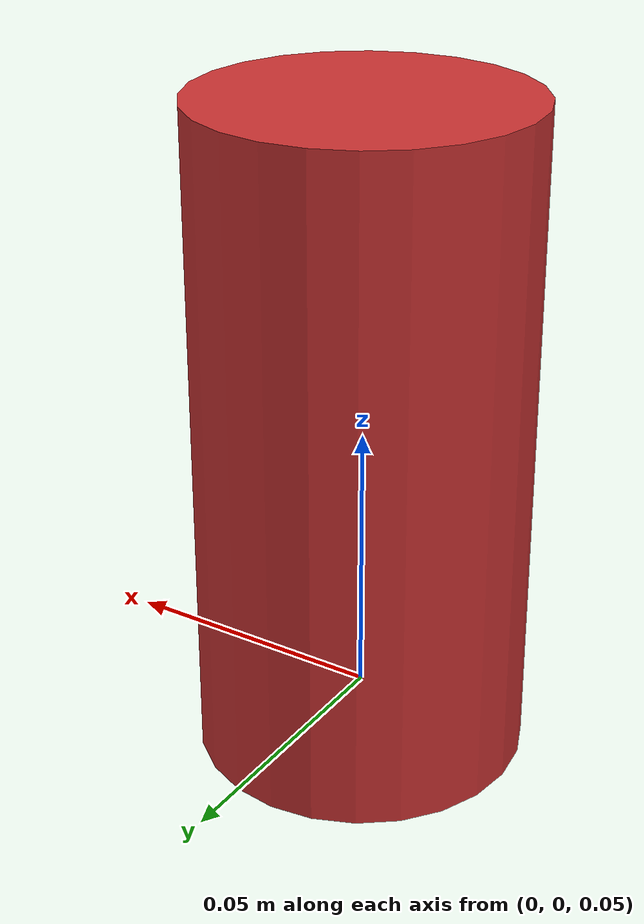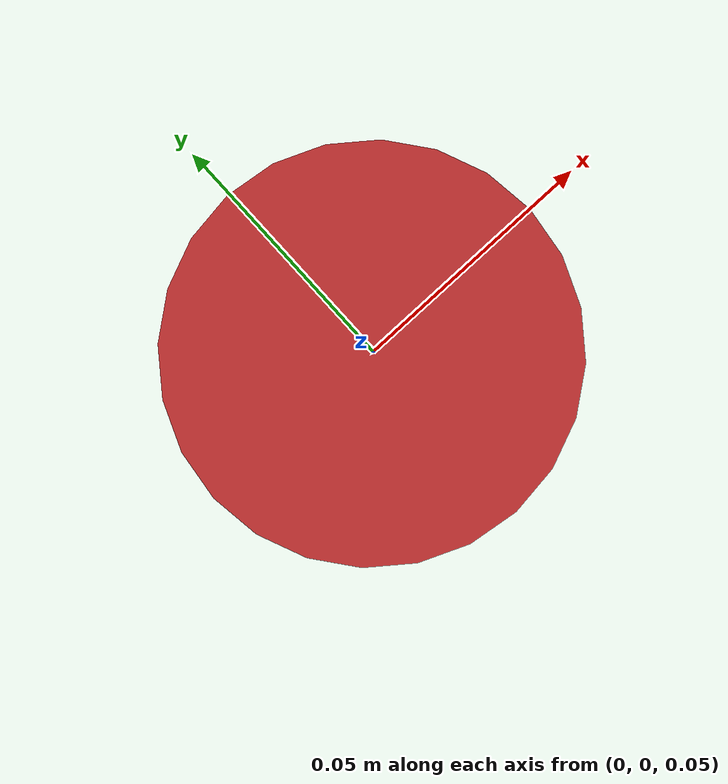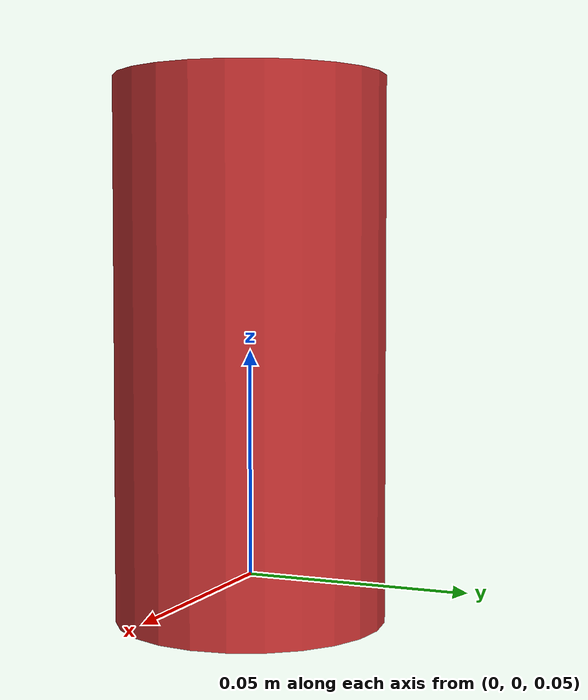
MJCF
<mujoco model="cylinder_object">
    <asset>
        <mesh name="cylinder" file="cylinder.stl" scale="0.04 0.04 0.08"/>
        <material name="object_mat" rgba="0.8 0.2 0.2 1"/>
    </asset>

    <worldbody>
        <body name="cylinder" pos="0 0 0.1">
            <joint type="free"/>
            <geom name="cylinder_geom" type="cylinder" size="0.03 0.06"
                  mass="0.2" material="object_mat"
                  friction="1.0 0.005 0.0001" condim="4"/>
            <inertial pos="0 0 0" mass="0.2"
                      diaginertia="0.00018 0.00018 0.00009"/>
        </body>
    </worldbody>
</mujoco>
